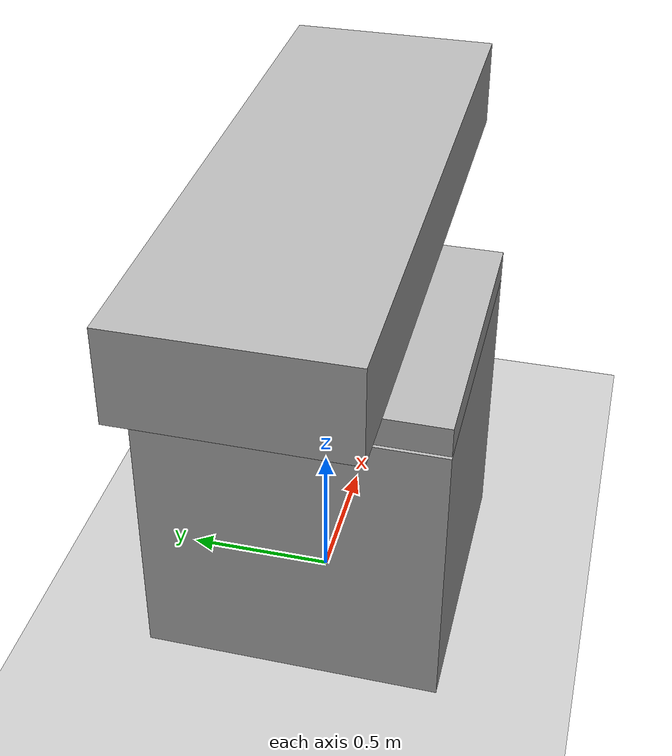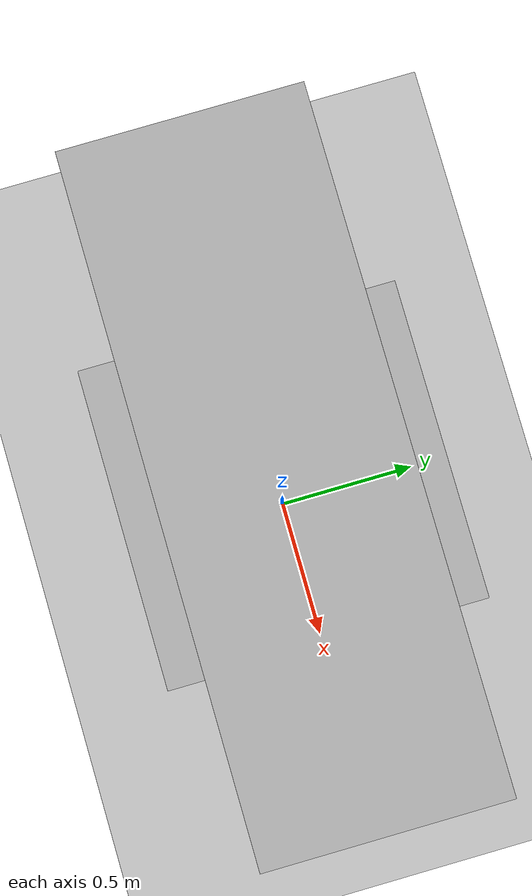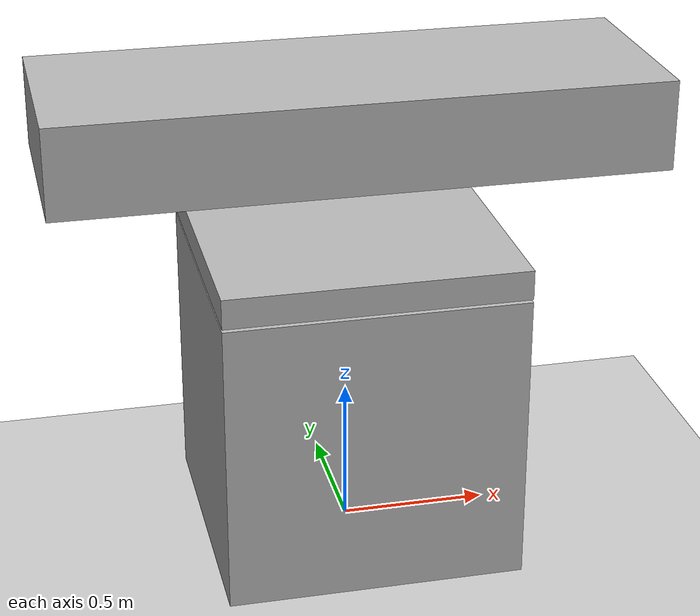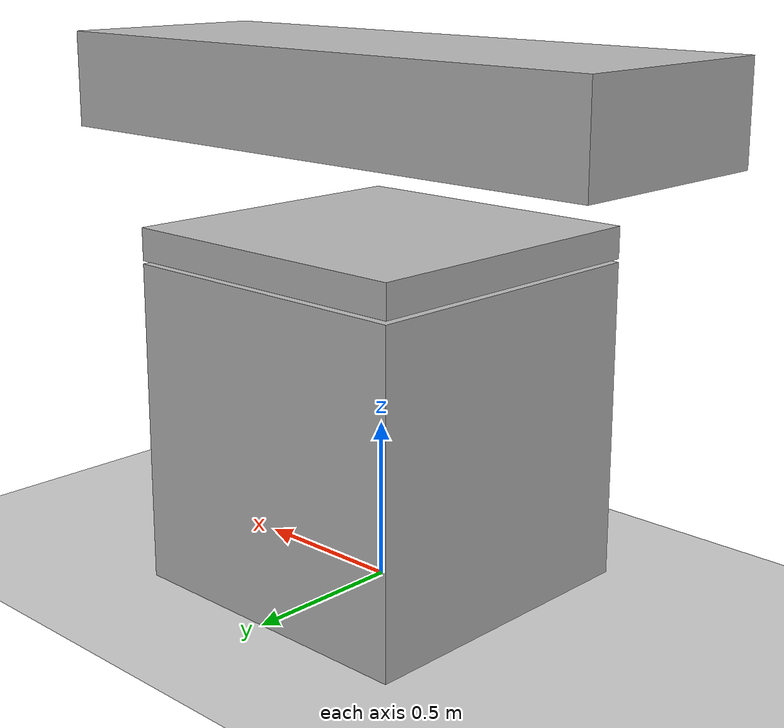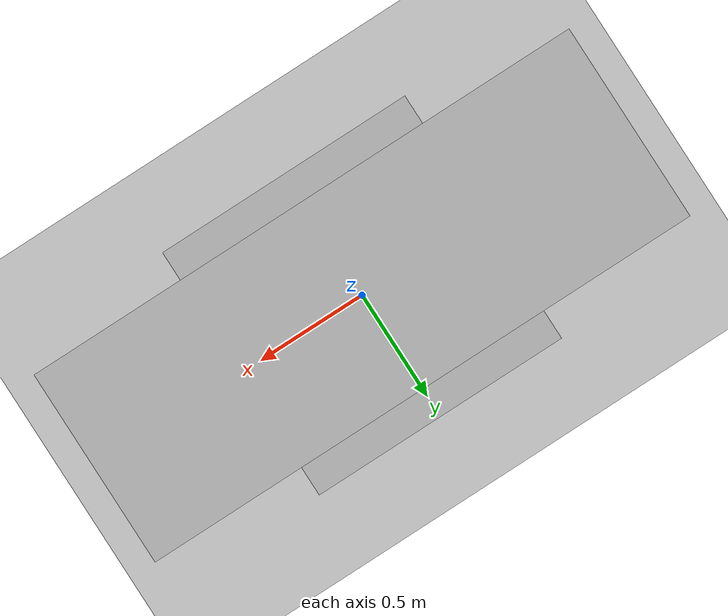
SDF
<?xml version="1.0" ?>
<!--
Copyright 2020 RUVU Robotics B.V.
-->

<sdf version="1.5">
  <world name="default">
    <!-- Ground -->
    <include>
      <uri>model://ground_plane</uri>
    </include>

    <model name="dummy_robot">
      <pose>0 0 0.5 0 0 0</pose>
      <link name="base">
        <inertial>
          <mass>0.1</mass>
        </inertial>
        <visual name="base">
          <geometry>
            <box>
              <size>1.0 1.0 1.0</size>
            </box>
          </geometry>
          <material>
            <script>
              <uri>model://ruvu_cube/materials/scripts</uri>
              <uri>model://ruvu_cube/materials/textures</uri>
              <name>RUVUCube/Diffuse</name>
            </script>
          </material>
        </visual>
        <collision name="collision">
          <geometry>
            <box>
              <size>1.0 1.0 1.0</size>
            </box>
          </geometry>
        </collision>
      </link>
      <link name="lift">
        <pose>0 0 0.56 0 0 0</pose>
        <inertial>
          <mass>0.1</mass>
        </inertial>
        <visual name="base">
          <geometry>
            <box>
              <size>1.0 1.0 0.1</size>
            </box>
          </geometry>
        </visual>
        <collision name="collision">
          <geometry>
            <box>
              <size>1.0 1.0 0.1</size>
            </box>
          </geometry>
        </collision>
      </link>
      <joint name="lift_joint" type="prismatic">
          <child>lift</child>
          <parent>base</parent>
          <axis>
              <limit>
                  <lower>0</lower>
                  <upper>0.9</upper>
              </limit>
              <xyz>0 0 1</xyz>
          </axis>
      </joint>
      <plugin name="single_joint_position_lifter" filename="libruvu_single_joint_position_lifter.so">
      </plugin>
      <plugin name="twist_teleport" filename="libruvu_twist_teleport.so">
      </plugin>
    </model>

    <model name="cart">
      <pose>0 0 1.5 0 0 0</pose>
      <link name="base">
        <inertial>
          <mass>0.1</mass>
        </inertial>
        <collision name="collision">
          <geometry>
            <box>
              <size>2.0 0.7 0.3</size>
            </box>
          </geometry>
        </collision>
        <visual name="visual">
          <geometry>
            <box>
              <size>2.0 0.7 0.3</size>
            </box>
          </geometry>
        </visual>
      </link>
    </model>

    <!-- A global light source -->
    <include>
      <uri>model://sun</uri>
    </include>
    <plugin name="disable_physics" filename="libruvu_disable_physics.so"/>
  </world>

</sdf>
